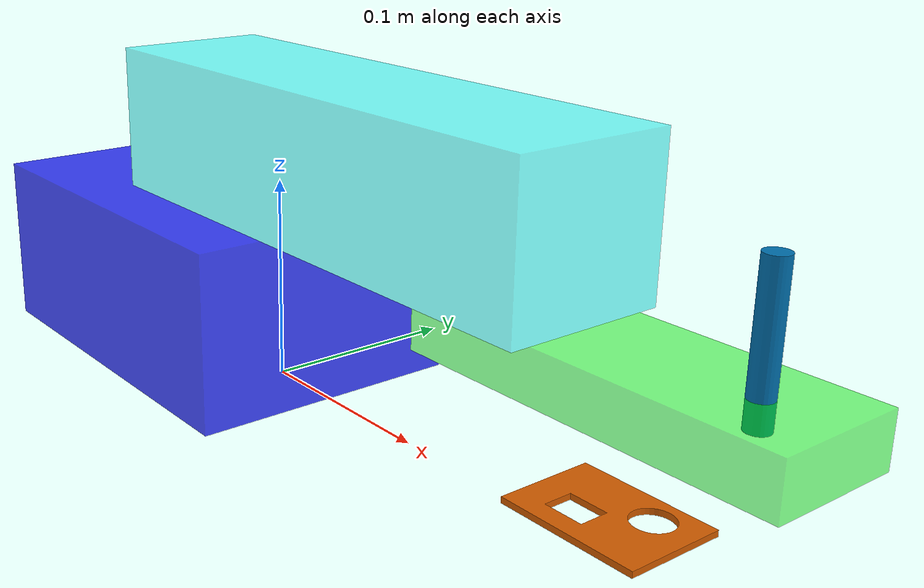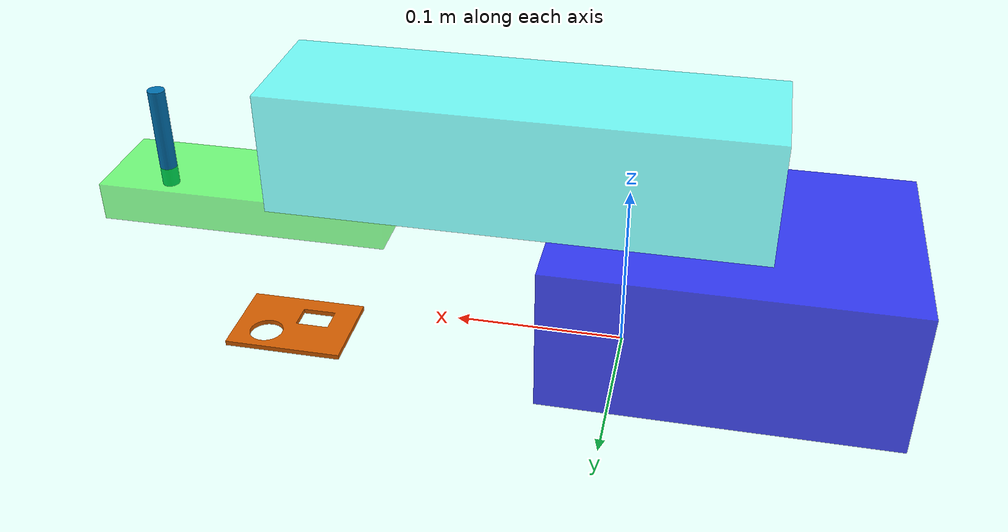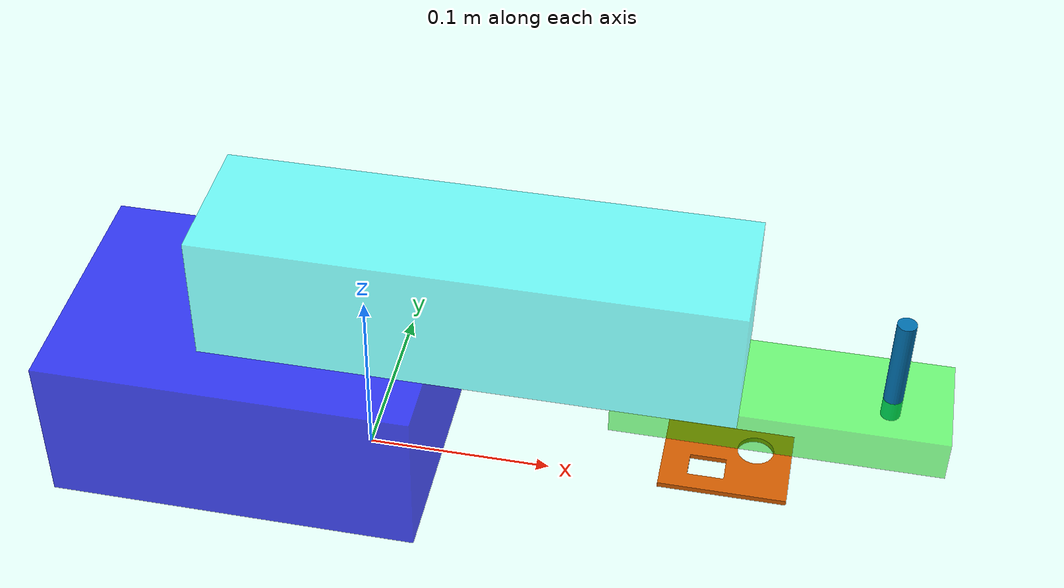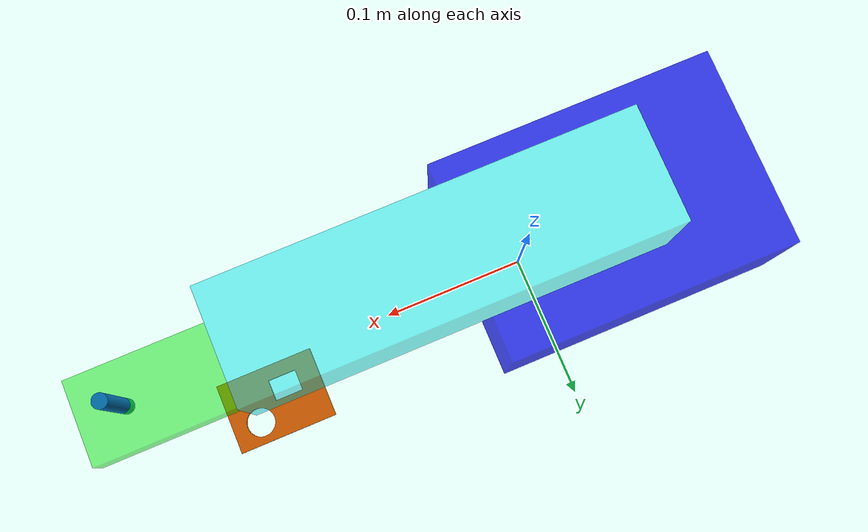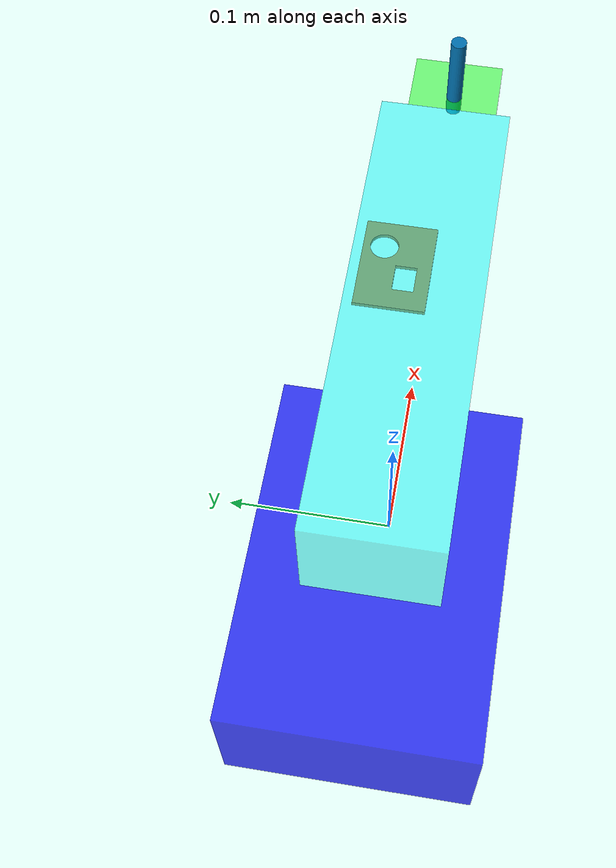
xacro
<?xml version='1.0'?>
<robot xmlns:xacro="http://www.ros.org/wiki/xacro" name="ms2r">

    <!--Propiedades-->
    <xacro:property name="rescale" value="${1000}" />

    <xacro:property name="r1" value="${1.60/10}" />

    <xacro:property name="base_x" value="${200/rescale}" />
    <xacro:property name="base_y" value="${139/rescale}" />
    <xacro:property name="base_z" value="${86.5/rescale}" />
    <xacro:property name="off_edge_base_arm1" value="${40.4/rescale}" />

    <xacro:property name="arm_1_x" value="${280.15/rescale}" />
    <xacro:property name="arm_1_y" value="${76/rescale}" />
    <xacro:property name="arm_1_z" value="${71/rescale}" />
    <xacro:property name="off_edge_center_arm1" value="${80.15/rescale}" />

    <xacro:property name="arm_2_x" value="${170/rescale}" />
    <xacro:property name="arm_2_y" value="${58/rescale}" />
    <xacro:property name="arm_2_z" value="${22.7/rescale}" />
    <xacro:property name="off_edge_center_arm2" value="${25/rescale}" />

    <xacro:property name="prism_len" value="${60.85/rescale}" />
    <xacro:property name="prism_r" value="${5/rescale}" />
    <xacro:property name="off_edge_prism_arm2" value="${25/rescale}" />

    <xacro:property name="upper_limit_angular_arm_1" value="${pi/2}" />
    <xacro:property name="lower_limit_angular_arm_1" value="${pi/2}" />

    <xacro:property name="upper_limit_angular_arm_2" value="${2*pi/3}" />
    <xacro:property name="lower_limit_angular_arm_2" value="${2*pi/3}" />

    <xacro:property name="lower_limit_linear" value="${0}" />
    <xacro:property name="upper_limit_linear" value="${prism_len+arm_2_z/2}" />

    <xacro:property name="piece_scale" value="${0.001}" />

     <!--Macros-->

    <xacro:macro name="arm_macro" params="p_name p_x p_y p_length_z offset mat_name r g b a">
        <link name="${p_name}">
            <visual>
                <geometry>
                    <box size="${p_x} ${p_y} ${p_length_z}"/>
                </geometry>
                <material name="${mat_name}">
                    <color rgba="${r} ${g} ${b} ${a}"/>
                </material>
                <origin xyz="${p_x/2-offset} 0 0" rpy="0 0 0"/>
            </visual>

            <inertial>
                <mass value="1"/>
                <origin xyz="0 0 0" rpy="0 0 0"/>
                <inertia ixx="1" ixy="0" ixz="0" iyy="1" iyz="0" izz="1"/>
            </inertial>

            <collision>
                <geometry>
                    <box size="${p_x} ${p_y} ${p_length_z}"/>
                </geometry>
                <origin xyz="${p_x/2} 0 0" rpy="0 0 0"/>
            </collision>
        </link>
    </xacro:macro>

<!--Estructura robot-->
        <!--Estructura robot-->
    <link name="base_link">
    </link>

    <joint name="base_base_1_joint" type="fixed">
        <parent link="base_link"/>
        <child link="base_1_link"/>
        <origin xyz="-${base_x/2-off_edge_base_arm1} 0 ${base_z/2}" rpy="0 0 0"/>
    </joint>

   <link name="base_1_link">
        <visual>
            <origin xyz="0 0 0" rpy="0 0 0"/>
            <geometry>
            <box size="${base_x} ${base_y} ${base_z}"/>
            </geometry>
            <material name="blue">
                <color rgba="0 0 1 0.75"/>
            </material>
        </visual>
    </link>

    <joint name="base_to_arm1_joint" type="revolute">
        <parent link="base_link"/>
        <child link="arm_1_link"/>
        <origin xyz="0 0 ${base_z+arm_1_z/2}" rpy="0 0 0"/>
        <axis xyz="0 0 1"/> <!-- rotación vertical -->
        <limit effort="1" lower="-${lower_limit_angular_arm_1}" upper="${upper_limit_angular_arm_1}" velocity="1"/>
    </joint>

    <xacro:arm_macro p_name = "arm_1_link"
                       p_x = "${arm_1_x}"
                       p_y ="${arm_1_y}"
                       p_length_z="${arm_1_z}"
                       offset = "${off_edge_center_arm1}"
                       mat_name = "cian"
                       r = "${0}"
                       g = "${1}"
                       b = "${1}"
                       a = "${0.5}"/>

    <joint name="arm_1_arm_2_joint" type="revolute">
        <parent link="arm_1_link"/>
        <child link="arm_2_link"/>
        <origin xyz="${r1} 0 -${arm_1_z/2+arm_2_z/2}" rpy="0 0 0"/>
        <axis xyz="0 0 1"/>
        <limit effort="1" lower="-${lower_limit_angular_arm_2}" upper="${upper_limit_angular_arm_2}" velocity="1"/>
        <dynamics damping="1" friction="1"/>
    </joint>

    <xacro:arm_macro p_name = "arm_2_link"
                    p_x = "${arm_2_x}"
                    p_y ="${arm_2_y}"
                    p_length_z="${arm_2_z}"
                    offset = "${off_edge_center_arm2}"
                    mat_name = "green"
                    r = "0"
                    g = "1"
                    b = "0"
                    a = "0.5"/>

    <joint name="arm_2_prismatic_joint" type="prismatic">
        <parent link="arm_2_link"/>
        <child link="prismatic_link"/>
        <origin xyz="${arm_2_x-off_edge_center_arm2-prism_r-off_edge_prism_arm2} 0 0" rpy="0 0 0"/>
        <axis xyz="0 0 -1"/>
        <limit effort="1" lower="${lower_limit_linear}" upper="${upper_limit_linear}" velocity="1"/>
        <dynamics damping="1" friction="1"/>
    </joint>

    <link name="prismatic_link">
        <visual>
            <geometry>
                <cylinder radius="${prism_r}" length="${prism_len}"/>

            </geometry>
            <origin xyz="0 0 ${prism_len/2}" rpy="0 0 0"/>
        </visual>
        <inertial>
                <mass value="1"/>
                <origin xyz="0 0 ${prism_len/2}" rpy="0 0 0"/>
                <inertia ixx="1" ixy="0" ixz="0" iyy="1" iyz="0" izz="1"/>
            </inertial>

            <collision>
                <geometry>
                   <cylinder radius="${prism_r}" length="${prism_len}"/>
                </geometry>
                <origin xyz="0 0 ${prism_len/2}" rpy="0 0 0"/>
            </collision>
    </link>
    <link name="pieza">
        <visual>
            <geometry>
            <mesh filename="package://scara_pkg_gr03/model/part7_8.stl" scale="0.001 0.001 0.001"/>
            </geometry>
            <origin xyz="-0.16 -0.05 0" rpy="${pi} 0 0"/>
        </visual>

        <inertial>
          <mass value="1"/>
          <origin xyz="0 0 0" rpy="0 0 0"/>
          <inertia ixx="1" ixy="0" ixz="0" iyy="1" iyz="0" izz="1"/>
        </inertial>

        <collision>
            <geometry>
           <mesh filename="package://scara_pkg_gr03/model/part7_8.stl" scale="0.001 0.001 0.001"/>
            </geometry>
            <origin xyz="-0.16 0 0" rpy="${pi} 0 0"/>
        </collision>
    </link>
    <joint name="pieza_fix" type="fixed">
        <parent link="base_link"/>
        <child link="pieza"/>
        <origin xyz="0.16 0.05 0" rpy="0 0 0"/>
    </joint>

</robot>
